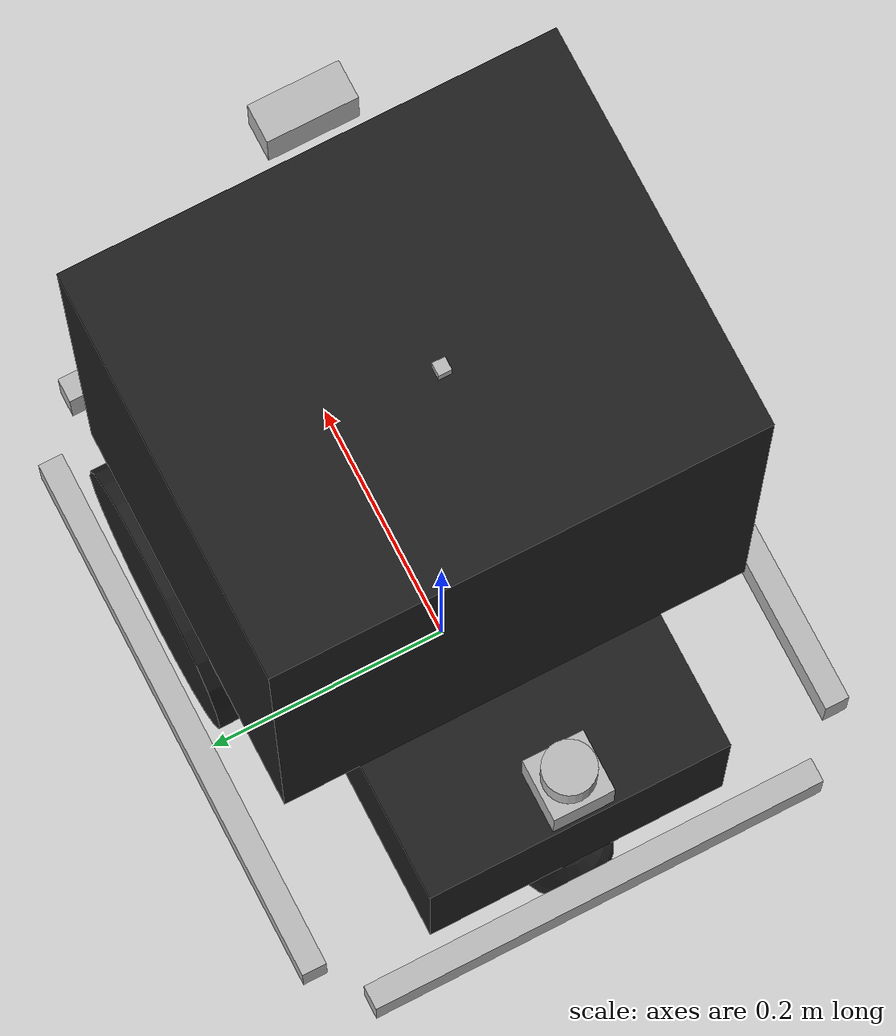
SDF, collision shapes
<?xml version="1.0"?>
<sdf version="1.4">
  <model name="sudo">

    <!-- Pioneer 2 Chassis-->
    <link name="chassis">
	<sensor name='chassis_contact' type='contact'>
	  <update_rate>10</update_rate>
          <contact>
            <collision>collision</collision>
          </contact>
	  <plugin name="contact_sensor" filename="libcontact.so"/>
        </sensor>
      <pose>0 0 0.16 0 0 0</pose>
      <inertial>
        <mass>6.0</mass>
        <inertia>
          <ixx>0.001</ixx>
          <iyy>0.001</iyy>
          <izz>0.001</izz>
          <ixy>0</ixy>
          <ixz>0</ixz>
          <iyz>0</iyz>
        </inertia>
      </inertial>
      <collision name="collision">
        <geometry>
          <box>
            <size>0.445 0.25 0.15</size>
          </box>
        </geometry>
      </collision>
      <collision name="castor_collision">
        <pose>-0.200 0 -0.12 0 0 0</pose>
        <geometry>
          <sphere>
            <radius>0.04</radius>
          </sphere>
        </geometry>
        <surface>
          <friction>
            <ode>
              <mu>0</mu>
              <mu2>0</mu2>
              <slip1>1.0</slip1>
              <slip2>1.0</slip2>
            </ode>
          </friction>
        </surface>
      </collision>
      <visual name="visual">
        <pose>0 0 0.04 0 0 0</pose>
        <geometry>
          <mesh>
            <uri>model://pioneer2dx/meshes/chassis.dae</uri>
          </mesh>
        </geometry>
      </visual>
      <visual name="castor_visual">
        <pose>-0.200 0 -0.12 0 0 0</pose>
        <geometry>
          <sphere>
            <radius>0.04</radius>
          </sphere>
        </geometry>
        <material>
          <script>
            <uri>file://media/materials/scripts/gazebo.material</uri>
            <name>Gazebo/FlatBlack</name>
          </script>
        </material>
      </visual>
    </link>
    <!-- Bottom cube of Sudo-->
    <link name="bottom_body_box">
      <pose>0.04 0 0.48 0 0 0</pose>
      <inertial>
        <mass>0.01</mass>
        <inertia>
          <ixx>0.07</ixx>
          <iyy>0.08</iyy>
          <izz>0.10</izz>
          <ixy>0</ixy>
          <ixz>0</ixz>
          <iyz>0</iyz>
        </inertia>
      </inertial>
      <collision name="collision">
        <geometry>
          <box>
            <size>0.315 0.38 0.42</size>
          </box>
        </geometry>
      </collision>
      <visual name="visual">
        <geometry>
          <box>
            <size>0.315 0.38 0.42</size>
          </box>
        </geometry>
        <material>
          <script>
            <uri>file://media/materials/scripts/gazebo.material</uri>
            <name>Gazebo/FlatBlack</name>
          </script>
        </material>
      </visual>
    </link>
    <link name="imu_link">
      <pose>0.0 0 0.77 0 0 0</pose>
      <inertial>
        <mass>0.01</mass>
        <inertia>
          <ixx>0.07</ixx>
          <iyy>0.08</iyy>
          <izz>0.10</izz>
          <ixy>0</ixy>
          <ixz>0</ixz>
          <iyz>0</iyz>
        </inertia>
      </inertial>
      <collision name="collision">
        <geometry>
          <box>
            <size> 0.01 0.01 0.01</size>
          </box>
        </geometry>
      </collision>
      <visual name="visual">
        <geometry>
          <box>
            <size>0.01 0.01 0.01</size>
          </box>
        </geometry>
      </visual>
    </link>
<!-- Small webcam that Amir uses for Navigation-->
    <link name="webcam">
      <pose>0.2 0 0.77 0 0 0</pose>
      <inertial>
        <mass>0.01</mass>
        <inertia>
          <ixx>0.07</ixx>
          <iyy>0.08</iyy>
          <izz>0.10</izz>
          <ixy>0</ixy>
          <ixz>0</ixz>
          <iyz>0</iyz>
        </inertia>
      </inertial>
      <collision name="collision">
        <geometry>
          <box>
            <size> 0.029 0.068 0.040</size>
          </box>
        </geometry>
      </collision>
      <visual name="visual">
        <geometry>
          <box>
            <size>0.029 0.068 0.040</size>
          </box>
        </geometry>
      </visual>
      <sensor name="camera" type="camera">
        <camera>
          <horizontal_fov>1.047</horizontal_fov>
          <image>
            <width>320</width>
            <height>240</height>
          </image>
          <clip>
            <near>0.05</near>
            <far>10</far>
          </clip>
        </camera>
        <always_on>1</always_on>
        <update_rate>30</update_rate>
        <visualize>false</visualize>
        <!-- Plugin to simulate camera image topic in gazebo and ros-->
        <plugin name="camera_controller" filename="libgazebo_ros_camera.so">
	        <alwaysOn>true</alwaysOn>
	        <updateRate>30.0</updateRate>
	        <cameraName>sudo/bottom_webcam</cameraName>
	        <imageTopicName>image_raw</imageTopicName>
	        <cameraInfoTopicName>camera_info</cameraInfoTopicName>
	        <frameName>webcam_link</frameName>
      </plugin>
      </sensor>
    </link>
    <!-- The link for sick laser. The used model is actually hokoyu-->
    <link name="sick_laser">
      <pose>-0.2 0 0.3 0 0 3.14</pose>
      <inertial>
        <mass>0.1</mass>
        <inertia>
          <ixx>0.07</ixx>
          <iyy>0.08</iyy>
          <izz>0.10</izz>
          <ixy>0</ixy>
          <ixz>0</ixz>
          <iyz>0</iyz>
        </inertia>
      </inertial>
      <visual name="visual">
        <geometry>
          <mesh>
            <uri>model://hokuyo/meshes/hokuyo.dae</uri>
          </mesh>
        </geometry>
      </visual>

      <collision name="collision-base">
        <pose>0 0 -0.0145 0 0 0</pose>
        <geometry>
          <box>
            <size>0.05 0.05 0.041</size>
          </box>
        </geometry>
      </collision>

      <collision name="collision-top">
        <pose>0 0 0.0205 0 0 0</pose>
        <geometry>
          <cylinder>
            <radius>0.021</radius>
            <length>0.029</length>
          </cylinder>
        </geometry>
      </collision>

      <sensor type="gpu_ray" name="head_hokuyo_sensor">
        <pose>0 0 0 0 0 0</pose>
        <visualize>true</visualize>
        <update_rate>30</update_rate>
        <ray>
          <scan>
            <horizontal>
              <samples>180</samples>
              <resolution>1</resolution>
              <min_angle>-1.7</min_angle>
              <max_angle>1.7</max_angle>
            </horizontal>
          </scan>
          <range>
            <min>0.10</min>
            <max>10.0</max>
            <resolution>0.01</resolution>
          </range>
          <noise>
            <type>gaussian</type>
            <mean>0.0</mean>
            <stddev>0.01</stddev>
          </noise>
        </ray>
        <!-- Plugin to simulate ros laser topic in gazebo and ros-->
        <plugin name="gazebo_ros_head_hokuyo_controller" filename="libgazebo_ros_gpu_laser.so">
          <topicName>/sudo/laser/scan</topicName>
          <frameName>laser_link</frameName>
        </plugin>
      </sensor>
    </link>

    <link name="right_wheel">
      <pose>0.1 -.17 0.11 0 1.5707 1.5707</pose>
      <inertial>
        <mass>0.5</mass>
        <inertia>
          <ixx>0.07</ixx>
          <iyy>0.08</iyy>
          <izz>0.10</izz>
          <ixy>0</ixy>
          <ixz>0</ixz>
          <iyz>0</iyz>
        </inertia>
      </inertial>
      <collision name="collision">
        <geometry>
          <cylinder>
            <radius>0.11</radius>
            <length>0.05</length>
          </cylinder>
        </geometry>
        <surface>
          <friction>
            <ode>
              <mu>100000.0</mu>
              <mu2>100000.0</mu2>
            </ode>
          </friction>
        </surface>
      </collision>
      <visual name="visual">
        <geometry>
          <cylinder>
            <radius>0.11</radius>
            <length>0.05</length>
          </cylinder>
        </geometry>
        <material>
          <script>
            <uri>file://media/materials/scripts/gazebo.material</uri>
            <name>Gazebo/FlatBlack</name>
          </script>
        </material>
      </visual>
    </link>

    <link name="left_wheel">
      <pose>0.1 .17 0.11 0 1.5707 1.5707</pose>
      <inertial>
        <mass>0.5</mass>
        <inertia>
          <ixx>0.07</ixx>
          <iyy>0.08</iyy>
          <izz>0.10</izz>
          <ixy>0</ixy>
          <ixz>0</ixz>
          <iyz>0</iyz>
        </inertia>
      </inertial>
      <collision name="collision">
        <geometry>
          <cylinder>
            <radius>0.11</radius>
            <length>0.05</length>
          </cylinder>
        </geometry>
        <surface>
          <friction>
            <ode>
              <mu>100000.0</mu>
              <mu2>100000.0</mu2>
            </ode>
          </friction>
        </surface>
      </collision>
      <visual name="visual">
        <geometry>
          <cylinder>
            <radius>0.11</radius>
            <length>0.05</length>
          </cylinder>
        </geometry>
        <material>
          <script>
            <uri>file://media/materials/scripts/gazebo.material</uri>
            <name>Gazebo/FlatBlack</name>
          </script>
        </material>
      </visual>
    </link>

    <link name="front_bumper">
      <pose>0.25 0 0.2 0 0 0</pose>
      <collision name="collision">
        <geometry>
          <box>
            <size> 0.02 0.38 0.04</size>
          </box>
        </geometry>
      </collision>
      <visual name="visual">
        <geometry>
          <box>
            <size>0.02 0.38 0.04</size>
          </box>
        </geometry>
      </visual>
      <sensor name="front_bumper" type="contact">
        <always_on>true</always_on>
        <update_rate>10.0</update_rate>
        <contact>
          <collision>collision</collision>
        </contact>
        <plugin name="front_bumper" filename="libgazebo_ros_bumper.so">
          <bumperTopicName>front_bumper_state</bumperTopicName>
          <frameName>front_bumper</frameName>
        </plugin>
      </sensor>
    </link>

    <link name="back_bumper">
      <pose>-0.25 0 0.1 0 0 0</pose>
      <collision name="collision">
        <geometry>
          <box>
            <size> 0.02 0.38 0.04</size>
          </box>
        </geometry>
      </collision>
      <visual name="visual">
        <geometry>
          <box>
            <size>0.02 0.38 0.04</size>
          </box>
        </geometry>
      </visual>
      <sensor name="back_bumper" type="contact">
        <always_on>true</always_on>
        <update_rate>10.0</update_rate>
        <contact>
          <collision>collision</collision>
        </contact>
        <plugin name="back_bumper" filename="libgazebo_ros_bumper.so">
          <bumperTopicName>back_bumper_state</bumperTopicName>
          <frameName>back_bumper</frameName>
        </plugin>
      </sensor>
    </link>

    <link name="left_bumper">
      <pose>0 0.22 0.15 0 0 1.57</pose>
      <collision name="collision">
        <geometry>
          <box>
            <size> 0.02 0.44 0.04</size>
          </box>
        </geometry>
      </collision>
      <visual name="visual">
        <geometry>
          <box>
            <size>0.02 0.44 0.04</size>
          </box>
        </geometry>
      </visual>
      <sensor name="left_bumper" type="contact">
        <always_on>true</always_on>
        <update_rate>10.0</update_rate>
        <contact>
          <collision>collision</collision>
        </contact>
        <plugin name="left_bumper" filename="libgazebo_ros_bumper.so">
          <bumperTopicName>left_bumper_state</bumperTopicName>
          <frameName>left_bumper</frameName>
        </plugin>
      </sensor>
    </link>

    <link name="right_bumper">
      <pose>0 -0.22 0.15 0 0 1.57</pose>
      <collision name="collision">
        <geometry>
          <box>
            <size> 0.02 0.44 0.04</size>
          </box>
        </geometry>
      </collision>
      <visual name="visual">
        <geometry>
          <box>
            <size>0.02 0.44 0.04</size>
          </box>
        </geometry>
      </visual>
      <sensor name="right_bumper" type="contact">
        <always_on>true</always_on>
        <update_rate>10.0</update_rate>
        <contact>
          <collision>collision</collision>
        </contact>
        <plugin name="right_bumper" filename="libgazebo_ros_bumper.so">
          <bumperTopicName>right_bumper_state</bumperTopicName>
          <frameName>right_bumper</frameName>
        </plugin>
      </sensor>
    </link>

    <joint type="revolute" name="left_wheel_hinge">
      <pose>0 0 0.03 0 0 0</pose>
      <child>left_wheel</child>
      <parent>chassis</parent>
      <axis>
        <xyz>0 1 0</xyz>
      </axis>
    </joint>
    <joint type="revolute" name="right_wheel_hinge">
      <pose>0 0 -0.03 0 0 0</pose>
      <child>right_wheel</child>
      <parent>chassis</parent>
      <axis>
        <xyz>0 1 0</xyz>
      </axis>
    </joint>

    <!-- Connection between chassis and bottom rectangular box-->
    <joint type="revolute" name="chassis_to_bottom">
      <pose>0 0 0.16 0 0 0</pose>
      <child>bottom_body_box</child>
      <parent>chassis</parent>
      <axis>
        <xyz>1 0 0</xyz>
        <limit>
	      <upper>0</upper>
	      <lower>0</lower>
   	    </limit>
      </axis>

    </joint>

    <joint type="revolute" name="chassis_to_front_bumper">
      <pose>0.0 0 0.0 0 0 0</pose>
      <child>front_bumper</child>
      <parent>chassis</parent>
      <axis>
        <xyz>1 0 0</xyz>
        <limit>
	      <upper>0</upper>
	      <lower>0</lower>
   	    </limit>
      </axis>
    </joint>
    <joint type="revolute" name="chassis_to_back_bumper">
      <pose>0.0 0 0.0 0 0 0</pose>
      <child>back_bumper</child>
      <parent>chassis</parent>
      <axis>
        <xyz>1 0 0</xyz>
        <limit>
	      <upper>0</upper>
	      <lower>0</lower>
   	    </limit>
      </axis>
    </joint>
    <joint type="revolute" name="body_to_left_bumper">
      <pose>0 0 0 0 0 0</pose>
      <child>left_bumper</child>
      <parent>bottom_body_box</parent>
      <axis>
        <xyz>0 1 0</xyz>
        <limit>
	      <upper>0</upper>
	      <lower>0</lower>
   	    </limit>
      </axis>
    </joint>
    <joint type="revolute" name="body_to_right_bumper">
      <pose>0 0 0 0 0 0</pose>
      <child>right_bumper</child>
      <parent>bottom_body_box</parent>
      <axis>
        <xyz>1 0 0</xyz>
        <limit>
	      <upper>0</upper>
	      <lower>0</lower>
   	    </limit>
      </axis>

    </joint>
    <!-- Connection between chassis and laser-->
    <joint type="revolute" name="laser_to_chassis">
      <pose>0.0 0 0.0 0 0 0</pose>
      <child>sick_laser</child>
      <parent>chassis</parent>
      <axis>
        <xyz>0 0 1</xyz>
        <limit>
	      <upper>0</upper>
	      <lower>0</lower>
   	    </limit>
      </axis>
    </joint>

    <!-- Connection between webcam and bottom rectangular box-->
    <joint type="revolute" name="bottom_to_webcam">
      <pose>0.0 0 0.0 0 0 0</pose>
      <child>webcam</child>
      <parent>bottom_body_box</parent>
      <axis>
        <xyz>0 0 1</xyz>
        <limit>
	      <upper>0</upper>
	      <lower>0</lower>
   	    </limit>
      </axis>
    </joint>

    <joint type="revolute" name="bottom_to_imu_link">
      <pose>0.0 0 0.0 0 0 0</pose>
      <child>imu_link</child>
      <parent>bottom_body_box</parent>
      <axis>
        <xyz>0 0 1</xyz>
        <limit>
	      <upper>0</upper>
	      <lower>0</lower>
   	    </limit>
      </axis>
    </joint>
	<!-- Make Sudo Move-->
    <plugin filename="libgazebo_ros_diff_drive.so" name="diff_drive">
      <leftJoint>right_wheel_hinge</leftJoint>
      <rightJoint>left_wheel_hinge</rightJoint>
      <wheelSeparation>0.32</wheelSeparation>
      <wheelDiameter>0.22</wheelDiameter>
      <torque>25</torque>
      <wheelTorque>25</wheelTorque>
      <wheelAcceleration>0.8</wheelAcceleration>
      <updateRate>100</updateRate>
      <topicName>/cmd_vel</topicName>
      <robotBaseFrame>base_link</robotBaseFrame>
    </plugin>

  </model>
</sdf>
